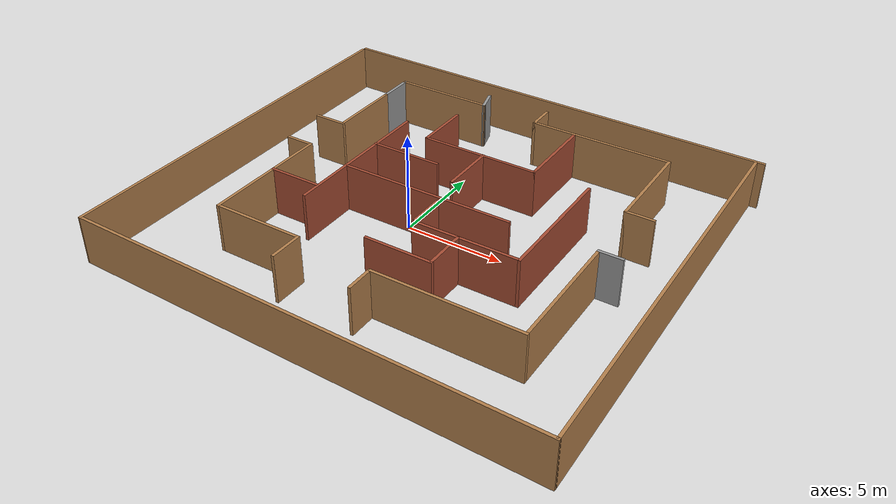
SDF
<?xml version='1.0'?>
<sdf version='1.7'>
  <model name='mase'>
    <pose>1.34435 0.321623 0 0 -0 0</pose>
    <link name='Wall_0'>
      <collision name='Wall_0_Collision'>
        <geometry>
          <box>
            <size>24.1484 0.15 2.5</size>
          </box>
        </geometry>
        <pose>0 0 1.25 0 -0 0</pose>
      </collision>
      <visual name='Wall_0_Visual'>
        <pose>0 0 1.25 0 -0 0</pose>
        <geometry>
          <box>
            <size>24.1484 0.15 2.5</size>
          </box>
        </geometry>
        <material>
          <script>
            <uri>file://media/materials/scripts/gazebo.material</uri>
            <name>Gazebo/Wood</name>
          </script>
          <ambient>1 1 1 1</ambient>
        </material>
        <meta>
          <layer>0</layer>
        </meta>
      </visual>
      <pose>0.035452 10.6535 0 0 -0 -0.01282</pose>
    </link>
    <link name='Wall_1'>
      <collision name='Wall_1_Collision'>
        <geometry>
          <box>
            <size>21.273 0.15 2.5</size>
          </box>
        </geometry>
        <pose>0 0 1.25 0 -0 0</pose>
      </collision>
      <visual name='Wall_1_Visual'>
        <pose>0 0 1.25 0 -0 0</pose>
        <geometry>
          <box>
            <size>21.273 0.15 2.5</size>
          </box>
        </geometry>
        <material>
          <script>
            <uri>file://media/materials/scripts/gazebo.material</uri>
            <name>Gazebo/Wood</name>
          </script>
          <ambient>1 1 1 1</ambient>
        </material>
        <meta>
          <layer>0</layer>
        </meta>
      </visual>
      <pose>11.75 -0.184583 0 0 -0 -1.5627</pose>
    </link>
    <link name='Wall_10'>
      <collision name='Wall_10_Collision'>
        <geometry>
          <box>
            <size>4.75 0.15 2.5</size>
          </box>
        </geometry>
        <pose>0 0 1.25 0 -0 0</pose>
      </collision>
      <visual name='Wall_10_Visual'>
        <pose>0 0 1.25 0 -0 0</pose>
        <geometry>
          <box>
            <size>4.75 0.15 2.5</size>
          </box>
        </geometry>
        <material>
          <script>
            <uri>file://media/materials/scripts/gazebo.material</uri>
            <name>Gazebo/Wood</name>
          </script>
          <ambient>1 1 1 1</ambient>
        </material>
        <meta>
          <layer>0</layer>
        </meta>
      </visual>
      <pose>-5.26006 -6.45017 0 0 -0 0</pose>
    </link>
    <link name='Wall_11'>
      <collision name='Wall_11_Collision'>
        <geometry>
          <box>
            <size>1.75 0.15 2.5</size>
          </box>
        </geometry>
        <pose>0 0 1.25 0 -0 0</pose>
      </collision>
      <visual name='Wall_11_Visual'>
        <pose>0 0 1.25 0 -0 0</pose>
        <geometry>
          <box>
            <size>1.75 0.15 2.5</size>
          </box>
        </geometry>
        <material>
          <script>
            <uri>file://media/materials/scripts/gazebo.material</uri>
            <name>Gazebo/Wood</name>
          </script>
          <ambient>1 1 1 1</ambient>
        </material>
        <meta>
          <layer>0</layer>
        </meta>
      </visual>
      <pose>-2.96006 -7.25017 0 0 -0 -1.5708</pose>
    </link>
    <link name='Wall_13'>
      <collision name='Wall_13_Collision'>
        <geometry>
          <box>
            <size>2 0.15 2.5</size>
          </box>
        </geometry>
        <pose>0 0 1.25 0 -0 0</pose>
      </collision>
      <visual name='Wall_13_Visual'>
        <pose>0 0 1.25 0 -0 0</pose>
        <geometry>
          <box>
            <size>2 0.15 2.5</size>
          </box>
        </geometry>
        <material>
          <script>
            <uri>file://media/materials/scripts/gazebo.material</uri>
            <name>Gazebo/Grey</name>
          </script>
          <ambient>1 1 1 1</ambient>
        </material>
        <meta>
          <layer>0</layer>
        </meta>
      </visual>
      <pose>-7.51899 7.49513 0 0 -0 1.5708</pose>
    </link>
    <link name='Wall_14'>
      <collision name='Wall_14_Collision'>
        <geometry>
          <box>
            <size>5.25 0.15 2.5</size>
          </box>
        </geometry>
        <pose>0 0 1.25 0 -0 0</pose>
      </collision>
      <visual name='Wall_14_Visual'>
        <pose>0 0 1.25 0 -0 0</pose>
        <geometry>
          <box>
            <size>5.25 0.15 2.5</size>
          </box>
        </geometry>
        <material>
          <script>
            <uri>file://media/materials/scripts/gazebo.material</uri>
            <name>Gazebo/Wood</name>
          </script>
          <ambient>1 1 1 1</ambient>
        </material>
        <meta>
          <layer>0</layer>
        </meta>
      </visual>
      <pose>-4.96899 8.42013 0 0 -0 0</pose>
    </link>
    <link name='Wall_15'>
      <collision name='Wall_15_Collision'>
        <geometry>
          <box>
            <size>1.25 0.15 2.5</size>
          </box>
        </geometry>
        <pose>0 0 1.25 0 -0 0</pose>
      </collision>
      <visual name='Wall_15_Visual'>
        <pose>0 0 1.25 0 -0 0</pose>
        <geometry>
          <box>
            <size>1.25 0.15 2.5</size>
          </box>
        </geometry>
        <material>
          <script>
            <uri>file://media/materials/scripts/gazebo.material</uri>
            <name>Gazebo/Grey</name>
          </script>
          <ambient>1 1 1 1</ambient>
        </material>
        <meta>
          <layer>0</layer>
        </meta>
      </visual>
      <pose>-2.56135 8.95139 0 0 -0 1.8326</pose>
    </link>
    <link name='Wall_17'>
      <collision name='Wall_17_Collision'>
        <geometry>
          <box>
            <size>1.5 0.15 2.5</size>
          </box>
        </geometry>
        <pose>0 0 1.25 0 -0 0</pose>
      </collision>
      <visual name='Wall_17_Visual'>
        <pose>0 0 1.25 0 -0 0</pose>
        <geometry>
          <box>
            <size>1.5 0.15 2.5</size>
          </box>
        </geometry>
        <material>
          <script>
            <uri>file://media/materials/scripts/gazebo.material</uri>
            <name>Gazebo/Wood</name>
          </script>
          <ambient>1 1 1 1</ambient>
        </material>
        <meta>
          <layer>0</layer>
        </meta>
      </visual>
      <pose>0.773894 8.83777 0 0 -0 -1.5708</pose>
    </link>
    <link name='Wall_18'>
      <collision name='Wall_18_Collision'>
        <geometry>
          <box>
            <size>7.5 0.15 2.5</size>
          </box>
        </geometry>
        <pose>0 0 1.25 0 -0 0</pose>
      </collision>
      <visual name='Wall_18_Visual'>
        <pose>0 0 1.25 0 -0 0</pose>
        <geometry>
          <box>
            <size>7.5 0.15 2.5</size>
          </box>
        </geometry>
        <material>
          <script>
            <uri>file://media/materials/scripts/gazebo.material</uri>
            <name>Gazebo/Wood</name>
          </script>
          <ambient>1 1 1 1</ambient>
        </material>
        <meta>
          <layer>0</layer>
        </meta>
      </visual>
      <pose>4.44889 8.16277 0 0 -0 0</pose>
    </link>
    <link name='Wall_19'>
      <collision name='Wall_19_Collision'>
        <geometry>
          <box>
            <size>5.25 0.15 2.5</size>
          </box>
        </geometry>
        <pose>0 0 1.25 0 -0 0</pose>
      </collision>
      <visual name='Wall_19_Visual'>
        <pose>0 0 1.25 0 -0 0</pose>
        <geometry>
          <box>
            <size>5.25 0.15 2.5</size>
          </box>
        </geometry>
        <material>
          <script>
            <uri>file://media/materials/scripts/gazebo.material</uri>
            <name>Gazebo/Wood</name>
          </script>
          <ambient>1 1 1 1</ambient>
        </material>
        <meta>
          <layer>0</layer>
        </meta>
      </visual>
      <pose>8.12389 5.61277 0 0 -0 -1.5708</pose>
    </link>
    <link name='Wall_2'>
      <collision name='Wall_2_Collision'>
        <geometry>
          <box>
            <size>24.0207 0.15 2.5</size>
          </box>
        </geometry>
        <pose>0 0 1.25 0 -0 0</pose>
      </collision>
      <visual name='Wall_2_Visual'>
        <pose>0 0 1.25 0 -0 0</pose>
        <geometry>
          <box>
            <size>24.0207 0.15 2.5</size>
          </box>
        </geometry>
        <material>
          <script>
            <uri>file://media/materials/scripts/gazebo.material</uri>
            <name>Gazebo/Wood</name>
          </script>
          <ambient>1 1 1 1</ambient>
        </material>
        <meta>
          <layer>0</layer>
        </meta>
      </visual>
      <pose>-0.099273 -10.6535 0 0 -0 3.12871</pose>
    </link>
    <link name='Wall_20'>
      <collision name='Wall_20_Collision'>
        <geometry>
          <box>
            <size>1.5 0.15 2.5</size>
          </box>
        </geometry>
        <pose>0 0 1.25 0 -0 0</pose>
      </collision>
      <visual name='Wall_20_Visual'>
        <pose>0 0 1.25 0 -0 0</pose>
        <geometry>
          <box>
            <size>1.5 0.15 2.5</size>
          </box>
        </geometry>
        <material>
          <script>
            <uri>file://media/materials/scripts/gazebo.material</uri>
            <name>Gazebo/Wood</name>
          </script>
          <ambient>1 1 1 1</ambient>
        </material>
        <meta>
          <layer>0</layer>
        </meta>
      </visual>
      <pose>8.79889 3.06277 0 0 -0 0</pose>
    </link>
    <link name='Wall_23'>
      <collision name='Wall_23_Collision'>
        <geometry>
          <box>
            <size>1.25 0.15 2.5</size>
          </box>
        </geometry>
        <pose>0 0 1.25 0 -0 0</pose>
      </collision>
      <visual name='Wall_23_Visual'>
        <pose>0 0 1.25 0 -0 0</pose>
        <geometry>
          <box>
            <size>1.25 0.15 2.5</size>
          </box>
        </geometry>
        <material>
          <script>
            <uri>file://media/materials/scripts/gazebo.material</uri>
            <name>Gazebo/Grey</name>
          </script>
          <ambient>1 1 1 1</ambient>
        </material>
        <meta>
          <layer>0</layer>
        </meta>
      </visual>
      <pose>8.9448 -0.331691 0 0 -0 3.14159</pose>
    </link>
    <link name='Wall_24'>
      <collision name='Wall_24_Collision'>
        <geometry>
          <box>
            <size>6.5 0.15 2.5</size>
          </box>
        </geometry>
        <pose>0 0 1.25 0 -0 0</pose>
      </collision>
      <visual name='Wall_24_Visual'>
        <pose>0 0 1.25 0 -0 0</pose>
        <geometry>
          <box>
            <size>6.5 0.15 2.5</size>
          </box>
        </geometry>
        <material>
          <script>
            <uri>file://media/materials/scripts/gazebo.material</uri>
            <name>Gazebo/Wood</name>
          </script>
          <ambient>1 1 1 1</ambient>
        </material>
        <meta>
          <layer>0</layer>
        </meta>
      </visual>
      <pose>8.3948 -3.50669 0 0 -0 -1.5708</pose>
    </link>
    <link name='Wall_25'>
      <collision name='Wall_25_Collision'>
        <geometry>
          <box>
            <size>7.5 0.15 2.5</size>
          </box>
        </geometry>
        <pose>0 0 1.25 0 -0 0</pose>
      </collision>
      <visual name='Wall_25_Visual'>
        <pose>0 0 1.25 0 -0 0</pose>
        <geometry>
          <box>
            <size>7.5 0.15 2.5</size>
          </box>
        </geometry>
        <material>
          <script>
            <uri>file://media/materials/scripts/gazebo.material</uri>
            <name>Gazebo/Wood</name>
          </script>
          <ambient>1 1 1 1</ambient>
        </material>
        <meta>
          <layer>0</layer>
        </meta>
      </visual>
      <pose>4.7198 -6.68169 0 0 -0 3.14159</pose>
    </link>
    <link name='Wall_26'>
      <collision name='Wall_26_Collision'>
        <geometry>
          <box>
            <size>1.5 0.15 2.5</size>
          </box>
        </geometry>
        <pose>0 0 1.25 0 -0 0</pose>
      </collision>
      <visual name='Wall_26_Visual'>
        <pose>0 0 1.25 0 -0 0</pose>
        <geometry>
          <box>
            <size>1.5 0.15 2.5</size>
          </box>
        </geometry>
        <material>
          <script>
            <uri>file://media/materials/scripts/gazebo.material</uri>
            <name>Gazebo/Wood</name>
          </script>
          <ambient>1 1 1 1</ambient>
        </material>
        <meta>
          <layer>0</layer>
        </meta>
      </visual>
      <pose>1.0448 -7.35669 0 0 -0 -1.5708</pose>
    </link>
    <link name='Wall_28'>
      <collision name='Wall_28_Collision'>
        <geometry>
          <box>
            <size>8.5 0.15 2.5</size>
          </box>
        </geometry>
        <pose>0 0 1.25 0 -0 0</pose>
      </collision>
      <visual name='Wall_28_Visual'>
        <pose>0 0 1.25 0 -0 0</pose>
        <geometry>
          <box>
            <size>8.5 0.15 2.5</size>
          </box>
        </geometry>
        <material>
          <script>
            <uri>file://media/materials/scripts/gazebo.material</uri>
            <name>Gazebo/Bricks</name>
          </script>
          <ambient>1 1 1 1</ambient>
        </material>
        <meta>
          <layer>0</layer>
        </meta>
      </visual>
      <pose>-4.82882 0.498063 0 0 -0 -1.5708</pose>
    </link>
    <link name='Wall_3'>
      <collision name='Wall_3_Collision'>
        <geometry>
          <box>
            <size>21.25 0.15 2.5</size>
          </box>
        </geometry>
        <pose>0 0 1.25 0 -0 0</pose>
      </collision>
      <visual name='Wall_3_Visual'>
        <pose>0 0 1.25 0 -0 0</pose>
        <geometry>
          <box>
            <size>21.25 0.15 2.5</size>
          </box>
        </geometry>
        <material>
          <script>
            <uri>file://media/materials/scripts/gazebo.material</uri>
            <name>Gazebo/Wood</name>
          </script>
          <ambient>1 1 1 1</ambient>
        </material>
        <meta>
          <layer>0</layer>
        </meta>
      </visual>
      <pose>-12.034 0.050355 0 0 -0 1.5708</pose>
    </link>
    <link name='Wall_30'>
      <collision name='Wall_30_Collision'>
        <geometry>
          <box>
            <size>3.75 0.15 2.5</size>
          </box>
        </geometry>
        <pose>0 0 1.25 0 -0 0</pose>
      </collision>
      <visual name='Wall_30_Visual'>
        <pose>0 0 1.25 0 -0 0</pose>
        <geometry>
          <box>
            <size>3.75 0.15 2.5</size>
          </box>
        </geometry>
        <material>
          <script>
            <uri>file://media/materials/scripts/gazebo.material</uri>
            <name>Gazebo/Bricks</name>
          </script>
          <ambient>1 1 1 1</ambient>
        </material>
        <meta>
          <layer>0</layer>
        </meta>
      </visual>
      <pose>-3.05062 1.96254 0 0 -0 0</pose>
    </link>
    <link name='Wall_32'>
      <collision name='Wall_32_Collision'>
        <geometry>
          <box>
            <size>3 0.15 2.5</size>
          </box>
        </geometry>
        <pose>0 0 1.25 0 -0 0</pose>
      </collision>
      <visual name='Wall_32_Visual'>
        <pose>0 0 1.25 0 -0 0</pose>
        <geometry>
          <box>
            <size>3 0.15 2.5</size>
          </box>
        </geometry>
        <material>
          <script>
            <uri>file://media/materials/scripts/gazebo.material</uri>
            <name>Gazebo/Bricks</name>
          </script>
          <ambient>1 1 1 1</ambient>
        </material>
        <meta>
          <layer>0</layer>
        </meta>
      </visual>
      <pose>-3.0253 5.24362 0 0 -0 -1.5708</pose>
    </link>
    <link name='Wall_33'>
      <collision name='Wall_33_Collision'>
        <geometry>
          <box>
            <size>6.25 0.15 2.5</size>
          </box>
        </geometry>
        <pose>0 0 1.25 0 -0 0</pose>
      </collision>
      <visual name='Wall_33_Visual'>
        <pose>0 0 1.25 0 -0 0</pose>
        <geometry>
          <box>
            <size>6.25 0.15 2.5</size>
          </box>
        </geometry>
        <material>
          <script>
            <uri>file://media/materials/scripts/gazebo.material</uri>
            <name>Gazebo/Bricks</name>
          </script>
          <ambient>1 1 1 1</ambient>
        </material>
        <meta>
          <layer>0</layer>
        </meta>
      </visual>
      <pose>0.024697 3.81862 0 0 -0 0</pose>
    </link>
    <link name='Wall_34'>
      <collision name='Wall_34_Collision'>
        <geometry>
          <box>
            <size>4.5 0.15 2.5</size>
          </box>
        </geometry>
        <pose>0 0 1.25 0 -0 0</pose>
      </collision>
      <visual name='Wall_34_Visual'>
        <pose>0 0 1.25 0 -0 0</pose>
        <geometry>
          <box>
            <size>4.5 0.15 2.5</size>
          </box>
        </geometry>
        <material>
          <script>
            <uri>file://media/materials/scripts/gazebo.material</uri>
            <name>Gazebo/Bricks</name>
          </script>
          <ambient>1 1 1 1</ambient>
        </material>
        <meta>
          <layer>0</layer>
        </meta>
      </visual>
      <pose>3.0747 5.99362 0 0 -0 1.5708</pose>
    </link>
    <link name='Wall_36'>
      <collision name='Wall_36_Collision'>
        <geometry>
          <box>
            <size>3 0.15 2.5</size>
          </box>
        </geometry>
        <pose>0 0 1.25 0 -0 0</pose>
      </collision>
      <visual name='Wall_36_Visual'>
        <pose>0 0 1.25 0 -0 0</pose>
        <geometry>
          <box>
            <size>3 0.15 2.5</size>
          </box>
        </geometry>
        <material>
          <script>
            <uri>file://media/materials/scripts/gazebo.material</uri>
            <name>Gazebo/Bricks</name>
          </script>
          <ambient>1 1 1 1</ambient>
        </material>
        <meta>
          <layer>0</layer>
        </meta>
      </visual>
      <pose>0.23835 2.40799 0 0 -0 -1.5708</pose>
    </link>
    <link name='Wall_38'>
      <collision name='Wall_38_Collision'>
        <geometry>
          <box>
            <size>9 0.15 2.5</size>
          </box>
        </geometry>
        <pose>0 0 1.25 0 -0 0</pose>
      </collision>
      <visual name='Wall_38_Visual'>
        <pose>0 0 1.25 0 -0 0</pose>
        <geometry>
          <box>
            <size>9 0.15 2.5</size>
          </box>
        </geometry>
        <material>
          <script>
            <uri>file://media/materials/scripts/gazebo.material</uri>
            <name>Gazebo/Bricks</name>
          </script>
          <ambient>1 1 1 1</ambient>
        </material>
        <meta>
          <layer>0</layer>
        </meta>
      </visual>
      <pose>-0.312383 -0.500713 0 0 -0 0</pose>
    </link>
    <link name='Wall_40'>
      <collision name='Wall_40_Collision'>
        <geometry>
          <box>
            <size>6.74904 0.15 2.5</size>
          </box>
        </geometry>
        <pose>0 0 1.25 0 -0 0</pose>
      </collision>
      <visual name='Wall_40_Visual'>
        <pose>0 0 1.25 0 -0 0</pose>
        <geometry>
          <box>
            <size>6.74904 0.15 2.5</size>
          </box>
        </geometry>
        <material>
          <script>
            <uri>file://media/materials/scripts/gazebo.material</uri>
            <name>Gazebo/Bricks</name>
          </script>
          <ambient>1 1 1 1</ambient>
        </material>
        <meta>
          <layer>0</layer>
        </meta>
      </visual>
      <pose>5.90961 0.586974 0 0 -0 -1.5708</pose>
    </link>
    <link name='Wall_41'>
      <collision name='Wall_41_Collision'>
        <geometry>
          <box>
            <size>5.39206 0.15 2.5</size>
          </box>
        </geometry>
        <pose>0 0 1.25 0 -0 0</pose>
      </collision>
      <visual name='Wall_41_Visual'>
        <pose>0 0 1.25 0 -0 0</pose>
        <geometry>
          <box>
            <size>5.39206 0.15 2.5</size>
          </box>
        </geometry>
        <material>
          <script>
            <uri>file://media/materials/scripts/gazebo.material</uri>
            <name>Gazebo/Bricks</name>
          </script>
          <ambient>1 1 1 1</ambient>
        </material>
        <meta>
          <layer>0</layer>
        </meta>
      </visual>
      <pose>3.1816 -2.72097 0 0 -0 -3.13838</pose>
    </link>
    <link name='Wall_42'>
      <collision name='Wall_42_Collision'>
        <geometry>
          <box>
            <size>2 0.15 2.5</size>
          </box>
        </geometry>
        <pose>0 0 1.25 0 -0 0</pose>
      </collision>
      <visual name='Wall_42_Visual'>
        <pose>0 0 1.25 0 -0 0</pose>
        <geometry>
          <box>
            <size>2 0.15 2.5</size>
          </box>
        </geometry>
        <material>
          <script>
            <uri>file://media/materials/scripts/gazebo.material</uri>
            <name>Gazebo/Bricks</name>
          </script>
          <ambient>1 1 1 1</ambient>
        </material>
        <meta>
          <layer>0</layer>
        </meta>
      </visual>
      <pose>0.56058 -1.76922 0 0 -0 1.5708</pose>
    </link>
    <link name='Wall_44'>
      <collision name='Wall_44_Collision'>
        <geometry>
          <box>
            <size>2.75 0.15 2.5</size>
          </box>
        </geometry>
        <pose>0 0 1.25 0 -0 0</pose>
      </collision>
      <visual name='Wall_44_Visual'>
        <pose>0 0 1.25 0 -0 0</pose>
        <geometry>
          <box>
            <size>2.75 0.15 2.5</size>
          </box>
        </geometry>
        <material>
          <script>
            <uri>file://media/materials/scripts/gazebo.material</uri>
            <name>Gazebo/Bricks</name>
          </script>
          <ambient>1 1 1 1</ambient>
        </material>
        <meta>
          <layer>0</layer>
        </meta>
      </visual>
      <pose>-6.24088 -2.67682 0 0 -0 0</pose>
    </link>
    <link name='Wall_46'>
      <collision name='Wall_46_Collision'>
        <geometry>
          <box>
            <size>2.25 0.15 2.5</size>
          </box>
        </geometry>
        <pose>0 0 1.25 0 -0 0</pose>
      </collision>
      <visual name='Wall_46_Visual'>
        <pose>0 0 1.25 0 -0 0</pose>
        <geometry>
          <box>
            <size>2.25 0.15 2.5</size>
          </box>
        </geometry>
        <material>
          <script>
            <uri>file://media/materials/scripts/gazebo.material</uri>
            <name>Gazebo/Bricks</name>
          </script>
          <ambient>1 1 1 1</ambient>
        </material>
        <meta>
          <layer>0</layer>
        </meta>
      </visual>
      <pose>2.87242 -3.81165 0 0 -0 -1.5708</pose>
    </link>
    <link name='Wall_47'>
      <collision name='Wall_47_Collision'>
        <geometry>
          <box>
            <size>3.5 0.15 2.5</size>
          </box>
        </geometry>
        <pose>0 0 1.25 0 -0 0</pose>
      </collision>
      <visual name='Wall_47_Visual'>
        <pose>0 0 1.25 0 -0 0</pose>
        <geometry>
          <box>
            <size>3.5 0.15 2.5</size>
          </box>
        </geometry>
        <material>
          <script>
            <uri>file://media/materials/scripts/gazebo.material</uri>
            <name>Gazebo/Bricks</name>
          </script>
          <ambient>1 1 1 1</ambient>
        </material>
        <meta>
          <layer>0</layer>
        </meta>
      </visual>
      <pose>1.19742 -4.86165 0 0 -0 3.14159</pose>
    </link>
    <link name='Wall_5'>
      <collision name='Wall_5_Collision'>
        <geometry>
          <box>
            <size>4 0.15 2.5</size>
          </box>
        </geometry>
        <pose>0 0 1.25 0 -0 0</pose>
      </collision>
      <visual name='Wall_5_Visual'>
        <pose>0 0 1.25 0 -0 0</pose>
        <geometry>
          <box>
            <size>4 0.15 2.5</size>
          </box>
        </geometry>
        <material>
          <script>
            <uri>file://media/materials/scripts/gazebo.material</uri>
            <name>Gazebo/Wood</name>
          </script>
          <ambient>1 1 1 1</ambient>
        </material>
        <meta>
          <layer>0</layer>
        </meta>
      </visual>
      <pose>-7.51899 4.64513 0 0 -0 -1.5708</pose>
    </link>
    <link name='Wall_6'>
      <collision name='Wall_6_Collision'>
        <geometry>
          <box>
            <size>1.75 0.15 2.5</size>
          </box>
        </geometry>
        <pose>0 0 1.25 0 -0 0</pose>
      </collision>
      <visual name='Wall_6_Visual'>
        <pose>0 0 1.25 0 -0 0</pose>
        <geometry>
          <box>
            <size>1.75 0.15 2.5</size>
          </box>
        </geometry>
        <material>
          <script>
            <uri>file://media/materials/scripts/gazebo.material</uri>
            <name>Gazebo/Wood</name>
          </script>
          <ambient>1 1 1 1</ambient>
        </material>
        <meta>
          <layer>0</layer>
        </meta>
      </visual>
      <pose>-8.31899 2.72013 0 0 -0 3.14159</pose>
    </link>
    <link name='Wall_8'>
      <collision name='Wall_8_Collision'>
        <geometry>
          <box>
            <size>1.5 0.15 2.5</size>
          </box>
        </geometry>
        <pose>0 0 1.25 0 -0 0</pose>
      </collision>
      <visual name='Wall_8_Visual'>
        <pose>0 0 1.25 0 -0 0</pose>
        <geometry>
          <box>
            <size>1.5 0.15 2.5</size>
          </box>
        </geometry>
        <material>
          <script>
            <uri>file://media/materials/scripts/gazebo.material</uri>
            <name>Gazebo/Wood</name>
          </script>
          <ambient>1 1 1 1</ambient>
        </material>
        <meta>
          <layer>0</layer>
        </meta>
      </visual>
      <pose>-8.23506 0.149832 0 0 -0 0</pose>
    </link>
    <link name='Wall_9'>
      <collision name='Wall_9_Collision'>
        <geometry>
          <box>
            <size>6.75 0.15 2.5</size>
          </box>
        </geometry>
        <pose>0 0 1.25 0 -0 0</pose>
      </collision>
      <visual name='Wall_9_Visual'>
        <pose>0 0 1.25 0 -0 0</pose>
        <geometry>
          <box>
            <size>6.75 0.15 2.5</size>
          </box>
        </geometry>
        <material>
          <script>
            <uri>file://media/materials/scripts/gazebo.material</uri>
            <name>Gazebo/Wood</name>
          </script>
          <ambient>1 1 1 1</ambient>
        </material>
        <meta>
          <layer>0</layer>
        </meta>
      </visual>
      <pose>-7.56006 -3.15017 0 0 -0 -1.5708</pose>
    </link>
    <static>1</static>
  </model>
</sdf>
